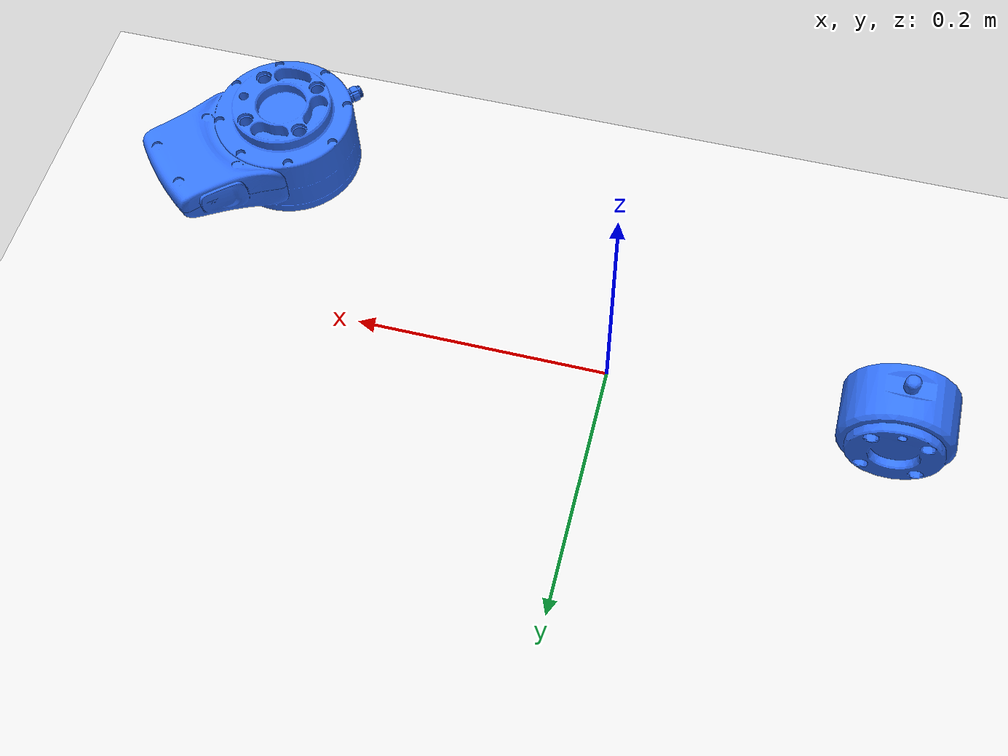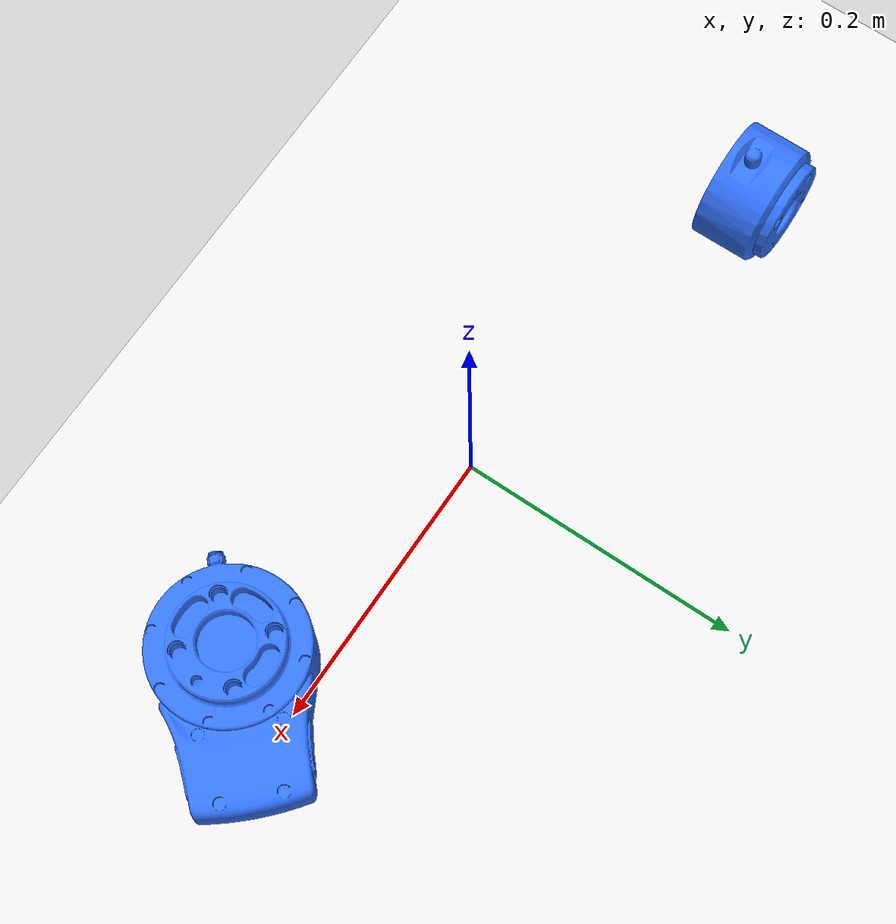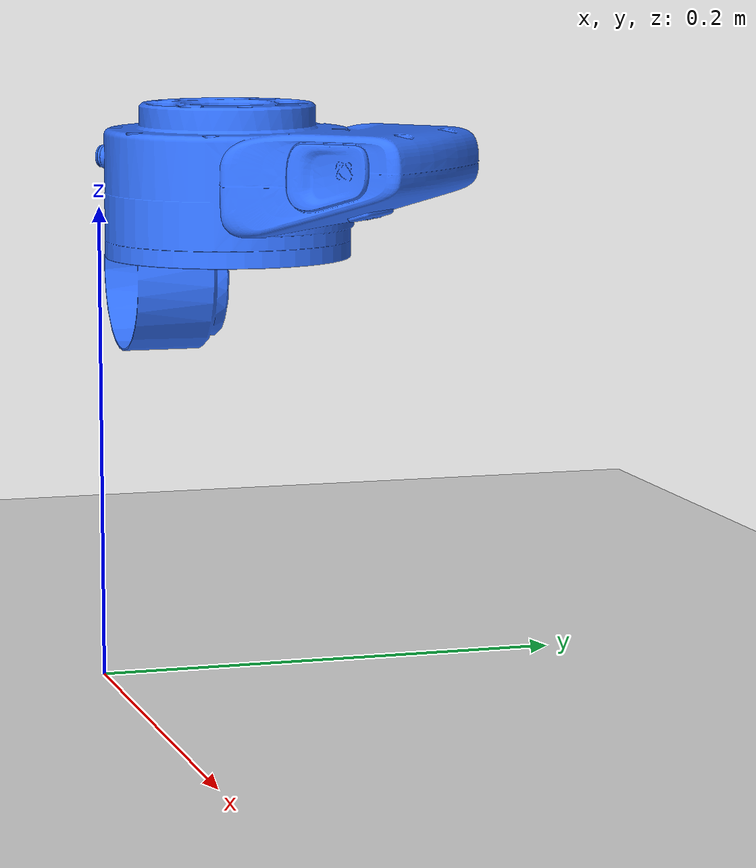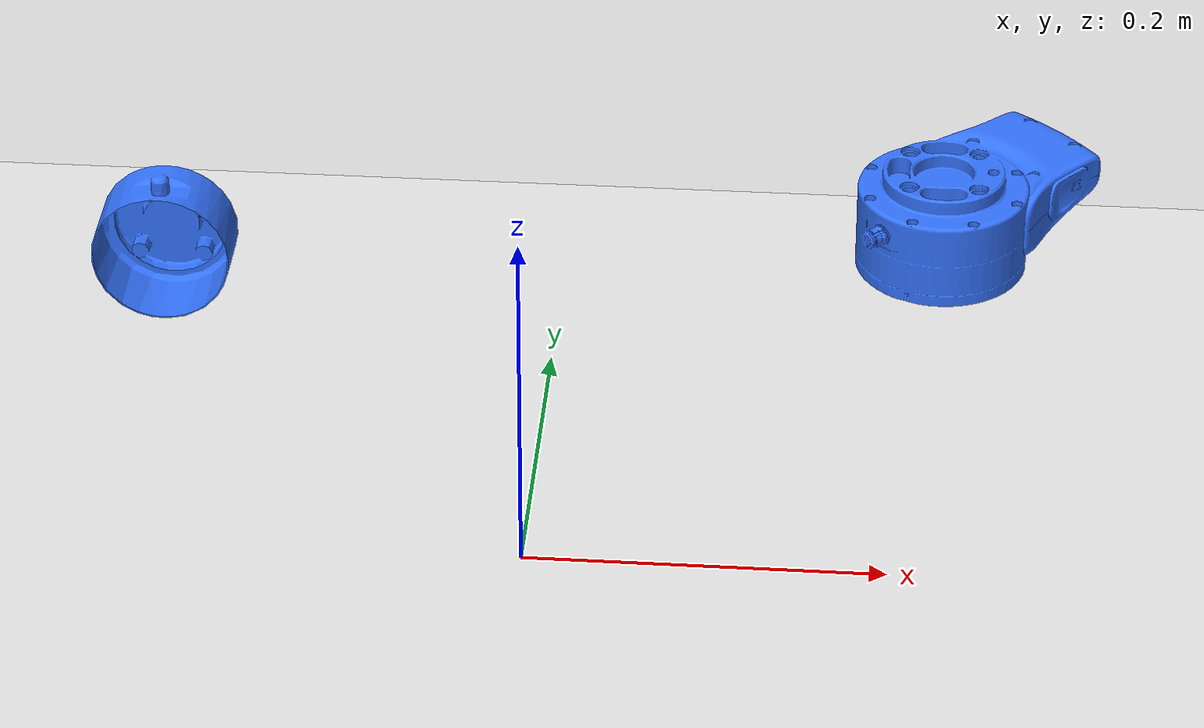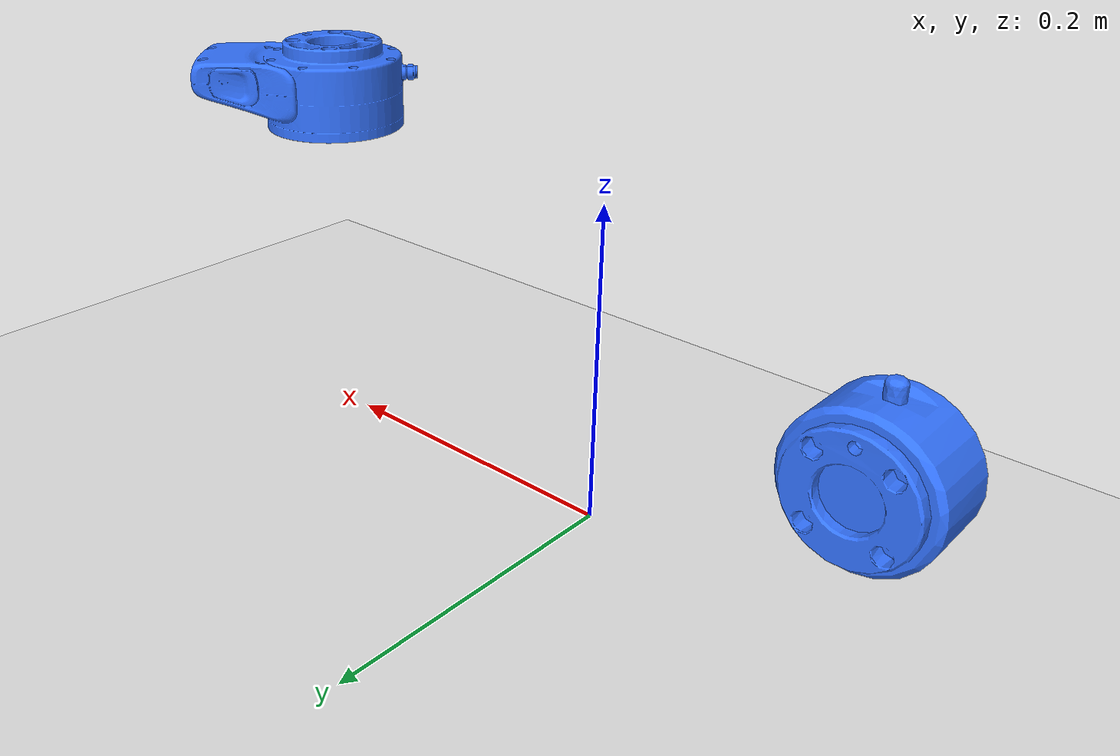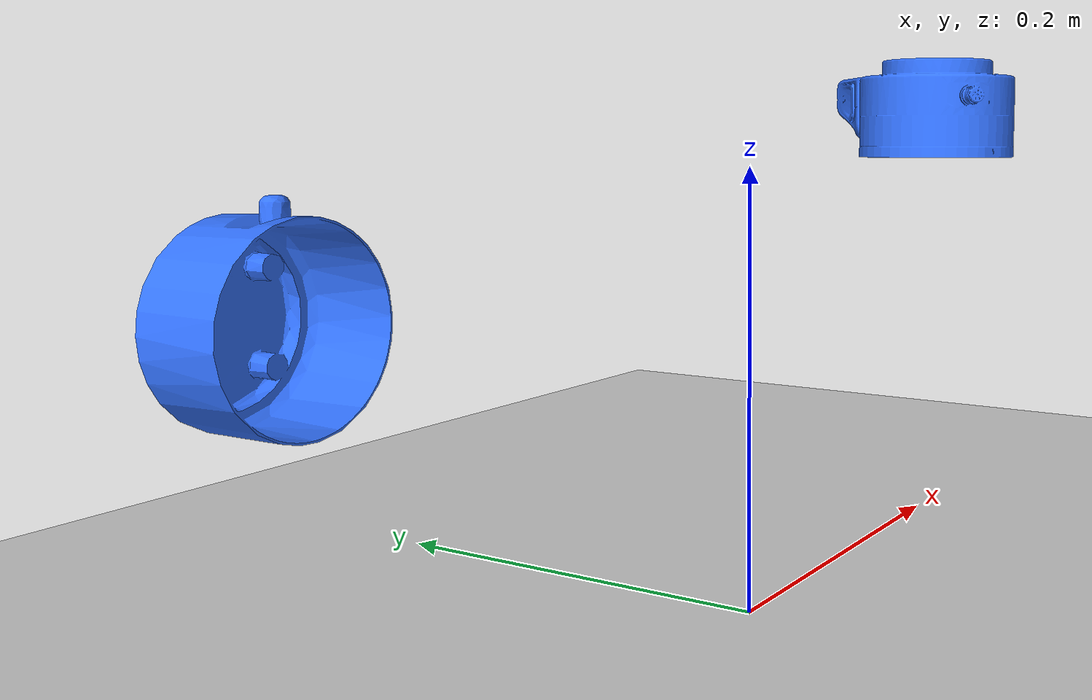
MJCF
<mujoco model="stage1a_alignment_view">
  <compiler angle="radian"/>
  <option timestep="0.002" integrator="implicitfast"/>

  <visual>
    <global azimuth="140" elevation="-20"/>
    <headlight ambient="0.35 0.35 0.35" diffuse="0.65 0.65 0.65" specular="0.1 0.1 0.1"/>
  </visual>

  <asset>
    <material name="orig_blue" rgba="0.2 0.45 1.0 1"/>
    <material name="vhacd_red" rgba="1 0 0 0.30"/>

    <mesh name="ur5e_wrist3_orig" file="universal_robots_ur5e/assets/wrist3.obj"/>
    <mesh name="ur5e_wrist3_vhacd" file="universal_robots_ur5e/assets/wrist3_vhacd.obj"/>

    <mesh name="fr3_link7_orig" file="franka_fr3/assets/link7.obj"/>
    <mesh name="fr3_link7_vhacd" file="franka_fr3/assets/link7_vhacd.obj"/>
  </asset>

  <worldbody>
    <light pos="0 0 2" dir="0 0 -1" directional="true"/>
    <geom type="plane" size="1 1 0.05" rgba="0.9 0.9 0.9 1"/>

    <body name="ur5e_wrist3_demo" pos="-0.20 0 0.15">
      <geom name="ur5e_wrist3_visual" type="mesh" mesh="ur5e_wrist3_orig" material="orig_blue" contype="0" conaffinity="0"/>
      <geom name="ur5e_wrist3_vhacd_overlay" type="mesh" mesh="ur5e_wrist3_vhacd" material="vhacd_red" group="3"/>
    </body>

    <body name="fr3_link7_demo" pos="0.22 0 0.15">
      <geom name="fr3_link7_visual" type="mesh" mesh="fr3_link7_orig" material="orig_blue" contype="0" conaffinity="0"/>
      <geom name="fr3_link7_vhacd_overlay" type="mesh" mesh="fr3_link7_vhacd" material="vhacd_red" group="3"/>
    </body>
  </worldbody>
</mujoco>
